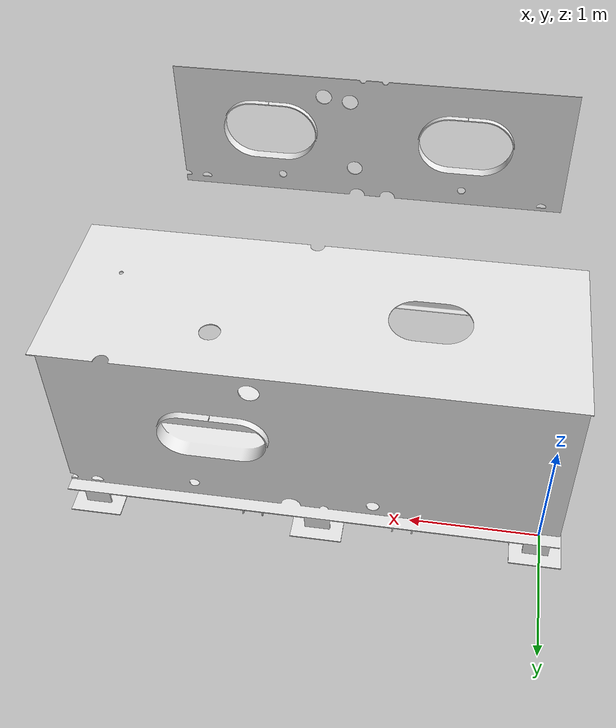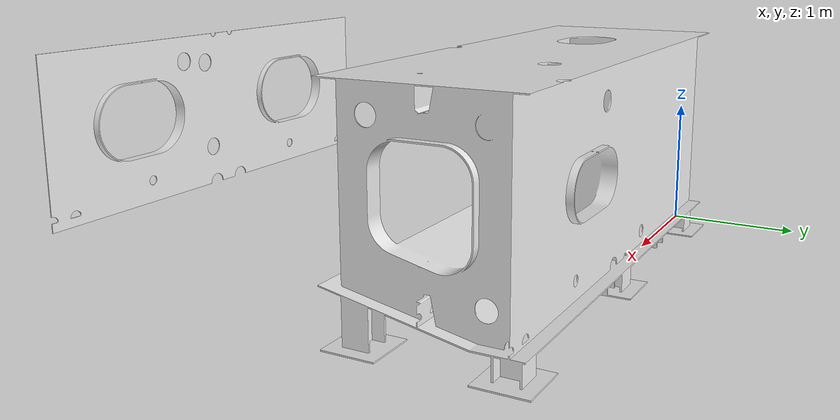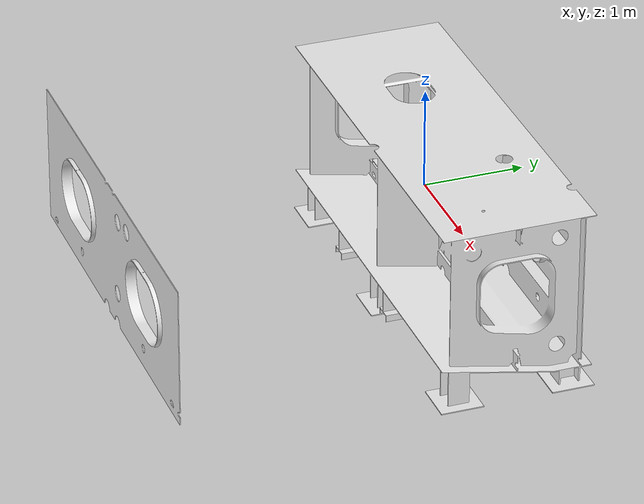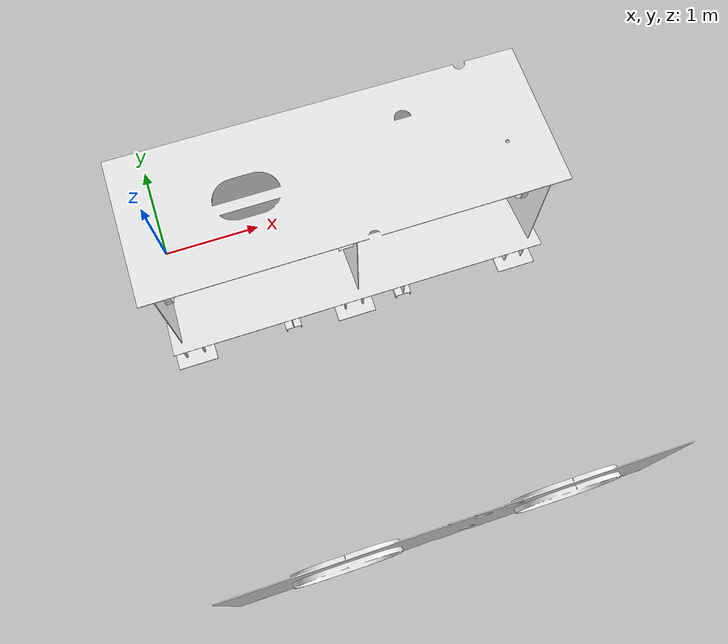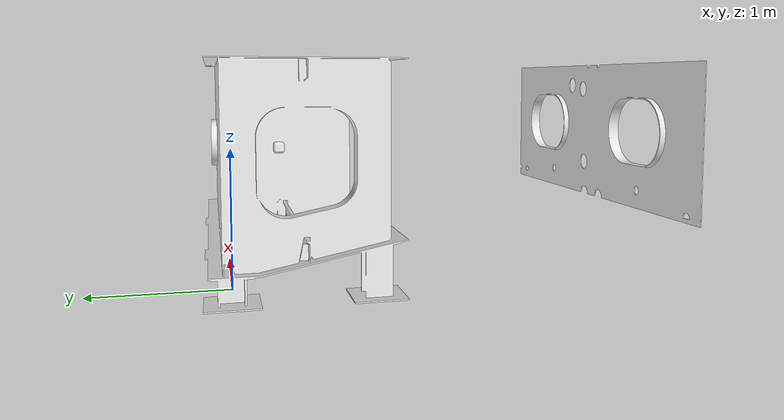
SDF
<?xml version="1.0"?>
<sdf version="1.6">
  <model name="maquette">
    <static>false</static>
    <link name="link">
      <collision name="collision">
        <geometry>
            <mesh>
                <uri>model://maquette/meshes/maquette_n_support.stl</uri>
                <scale>0.001 0.001 0.001</scale>
            </mesh>
        </geometry>
        <surface>
            <friction>
              <ode>
                <mu>100</mu>
                <mu2>50</mu2>
              </ode>
            </friction>
        </surface>
        </collision>
        <visual name="visual">
            <geometry>
                <mesh>
                    <uri>model://maquette/meshes/maquette_n_support.stl</uri>
                    <scale>0.001 0.001 0.001</scale>
                </mesh>
            </geometry>
            <material>
                <script>
                    <uri>file://media/materials/scripts/gazebo.material</uri>
                    <name>Gazebo/White</name>
                </script>
            </material>
        </visual>
    </link>
  </model>
</sdf>
